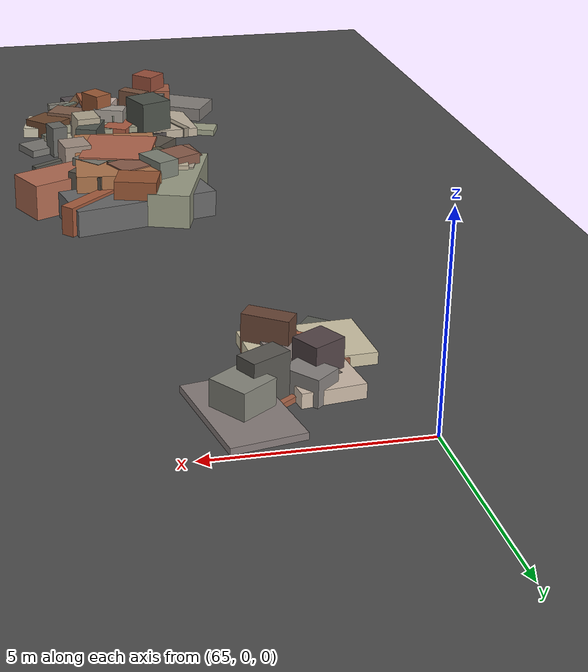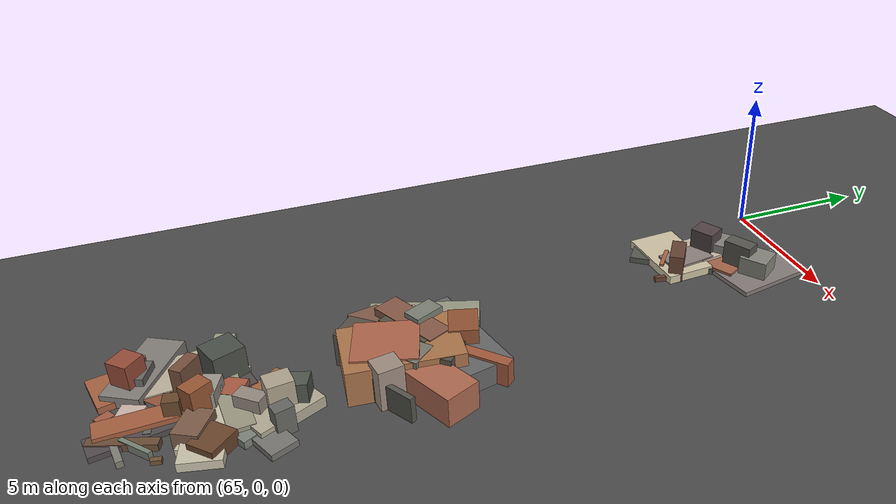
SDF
<sdf version="1.6">
 <world name="navitas_arena">
  <model name="ground_plane">
   <static>true</static>
   <link name="link">
    <collision name="collision">
     <geometry><plane><normal>0 0 1</normal><size>400 400</size></plane></geometry>
     <surface><friction><ode><mu>0.800</mu><mu2>0.800</mu2></ode></friction></surface>
    </collision>
    <visual name="visual">
     <cast_shadows>false</cast_shadows>
     <geometry><plane><normal>0 0 1</normal><size>400 400</size></plane></geometry>
     <material>
      <specular>0.04 0.04 0.04 1</specular>
      <script>
       <uri>file://media/materials/scripts/navitas_asphalt.material</uri>
       <name>Navitas/RealArenaAsphalt</name>
      </script>
     </material>
    </visual>
   </link>
  </model>
  <model name="blk_zor_1_0_3">
   <static>true</static>
   <pose>69.164 -13.826 0.000 0 0 0</pose>
   <link name="link">
    <collision name="col_0">
     <pose>-1.313 0.039 0.469 0.000 0.000 1.238</pose>
     <geometry><box><size>3.545 1.150 0.937</size></box></geometry>
    </collision>
    <visual name="vis_0">
     <pose>-1.313 0.039 0.469 0.000 0.000 1.238</pose>
     <geometry><box><size>3.545 1.150 0.937</size></box></geometry>
     <material>
      <ambient>0.56 0.56 0.48 1</ambient>
      <diffuse>0.60 0.61 0.52 1</diffuse>
      <specular>0.05 0.05 0.045 1</specular>
     </material>
    </visual>
    <collision name="col_1">
     <pose>0.157 -1.571 0.633 0.000 0.000 -0.287</pose>
     <geometry><box><size>1.962 2.049 1.266</size></box></geometry>
    </collision>
    <visual name="vis_1">
     <pose>0.157 -1.571 0.633 0.000 0.000 -0.287</pose>
     <geometry><box><size>1.962 2.049 1.266</size></box></geometry>
     <material>
      <ambient>0.64 0.37 0.27 1</ambient>
      <diffuse>0.69 0.40 0.30 1</diffuse>
      <specular>0.05 0.05 0.045 1</specular>
     </material>
    </visual>
    <collision name="col_2">
     <pose>1.078 -0.902 0.498 0.000 0.000 0.434</pose>
     <geometry><box><size>4.171 1.201 0.996</size></box></geometry>
    </collision>
    <visual name="vis_2">
     <pose>1.078 -0.902 0.498 0.000 0.000 0.434</pose>
     <geometry><box><size>4.171 1.201 0.996</size></box></geometry>
     <material>
      <ambient>0.64 0.39 0.29 1</ambient>
      <diffuse>0.69 0.42 0.32 1</diffuse>
      <specular>0.05 0.05 0.045 1</specular>
     </material>
    </visual>
    <collision name="col_3">
     <pose>0.893 0.727 0.409 0.000 0.000 0.744</pose>
     <geometry><box><size>3.067 0.385 0.818</size></box></geometry>
    </collision>
    <visual name="vis_3">
     <pose>0.893 0.727 0.409 0.000 0.000 0.744</pose>
     <geometry><box><size>3.067 0.385 0.818</size></box></geometry>
     <material>
      <ambient>0.60 0.34 0.23 1</ambient>
      <diffuse>0.65 0.36 0.24 1</diffuse>
      <specular>0.05 0.05 0.045 1</specular>
     </material>
    </visual>
    <collision name="col_4">
     <pose>0.856 -0.972 0.608 0.000 0.000 0.732</pose>
     <geometry><box><size>0.984 0.971 1.217</size></box></geometry>
    </collision>
    <visual name="vis_4">
     <pose>0.856 -0.972 0.608 0.000 0.000 0.732</pose>
     <geometry><box><size>0.984 0.971 1.217</size></box></geometry>
     <material>
      <ambient>0.44 0.43 0.40 1</ambient>
      <diffuse>0.48 0.47 0.43 1</diffuse>
      <specular>0.05 0.05 0.045 1</specular>
     </material>
    </visual>
    <collision name="col_5">
     <pose>1.015 -0.474 0.438 0.000 0.000 -0.391</pose>
     <geometry><box><size>0.368 0.247 0.876</size></box></geometry>
    </collision>
    <visual name="vis_5">
     <pose>1.015 -0.474 0.438 0.000 0.000 -0.391</pose>
     <geometry><box><size>0.368 0.247 0.876</size></box></geometry>
     <material>
      <ambient>0.67 0.40 0.30 1</ambient>
      <diffuse>0.73 0.43 0.32 1</diffuse>
      <specular>0.05 0.05 0.045 1</specular>
     </material>
    </visual>
    <collision name="col_6">
     <pose>-0.011 0.942 0.625 0.000 0.000 1.282</pose>
     <geometry><box><size>0.945 1.163 1.250</size></box></geometry>
    </collision>
    <visual name="vis_6">
     <pose>-0.011 0.942 0.625 0.000 0.000 1.282</pose>
     <geometry><box><size>0.945 1.163 1.250</size></box></geometry>
     <material>
      <ambient>0.54 0.30 0.18 1</ambient>
      <diffuse>0.58 0.33 0.20 1</diffuse>
      <specular>0.05 0.05 0.045 1</specular>
     </material>
    </visual>
    <collision name="col_7">
     <pose>-0.031 0.706 0.366 0.000 0.000 0.223</pose>
     <geometry><box><size>4.001 1.656 0.731</size></box></geometry>
    </collision>
    <visual name="vis_7">
     <pose>-0.031 0.706 0.366 0.000 0.000 0.223</pose>
     <geometry><box><size>4.001 1.656 0.731</size></box></geometry>
     <material>
      <ambient>0.38 0.38 0.38 1</ambient>
      <diffuse>0.41 0.41 0.41 1</diffuse>
      <specular>0.05 0.05 0.045 1</specular>
     </material>
    </visual>
    <collision name="col_8">
     <pose>0.071 -1.146 0.589 0.000 0.000 0.850</pose>
     <geometry><box><size>3.953 1.065 1.178</size></box></geometry>
    </collision>
    <visual name="vis_8">
     <pose>0.071 -1.146 0.589 0.000 0.000 0.850</pose>
     <geometry><box><size>3.953 1.065 1.178</size></box></geometry>
     <material>
      <ambient>0.32 0.30 0.26 1</ambient>
      <diffuse>0.35 0.32 0.28 1</diffuse>
      <specular>0.05 0.05 0.045 1</specular>
     </material>
    </visual>
    <collision name="col_9">
     <pose>0.284 -1.142 0.602 0.000 0.000 1.477</pose>
     <geometry><box><size>3.662 2.325 1.204</size></box></geometry>
    </collision>
    <visual name="vis_9">
     <pose>0.284 -1.142 0.602 0.000 0.000 1.477</pose>
     <geometry><box><size>3.662 2.325 1.204</size></box></geometry>
     <material>
      <ambient>0.63 0.43 0.28 1</ambient>
      <diffuse>0.68 0.46 0.30 1</diffuse>
      <specular>0.05 0.05 0.045 1</specular>
     </material>
    </visual>
   </link>
  </model>
  <model name="blk_zor_1_0_4">
   <static>true</static>
   <pose>69.090 -15.140 0.000 0 0 0</pose>
   <link name="link">
    <collision name="col_0">
     <pose>-1.205 -0.313 0.382 0.000 0.000 1.785</pose>
     <geometry><box><size>0.558 0.356 0.764</size></box></geometry>
    </collision>
    <visual name="vis_0">
     <pose>-1.205 -0.313 0.382 0.000 0.000 1.785</pose>
     <geometry><box><size>0.558 0.356 0.764</size></box></geometry>
     <material>
      <ambient>0.67 0.64 0.55 1</ambient>
      <diffuse>0.73 0.69 0.59 1</diffuse>
      <specular>0.05 0.05 0.045 1</specular>
     </material>
    </visual>
    <collision name="col_1">
     <pose>1.053 1.294 0.542 0.000 0.000 2.266</pose>
     <geometry><box><size>0.483 0.258 1.084</size></box></geometry>
    </collision>
    <visual name="vis_1">
     <pose>1.053 1.294 0.542 0.000 0.000 2.266</pose>
     <geometry><box><size>0.483 0.258 1.084</size></box></geometry>
     <material>
      <ambient>0.46 0.35 0.28 1</ambient>
      <diffuse>0.50 0.38 0.31 1</diffuse>
      <specular>0.05 0.05 0.045 1</specular>
     </material>
    </visual>
    <collision name="col_2">
     <pose>1.503 -0.818 0.438 0.000 0.000 3.679</pose>
     <geometry><box><size>2.743 0.190 0.876</size></box></geometry>
    </collision>
    <visual name="vis_2">
     <pose>1.503 -0.818 0.438 0.000 0.000 3.679</pose>
     <geometry><box><size>2.743 0.190 0.876</size></box></geometry>
     <material>
      <ambient>0.31 0.31 0.29 1</ambient>
      <diffuse>0.34 0.34 0.31 1</diffuse>
      <specular>0.05 0.05 0.045 1</specular>
     </material>
    </visual>
    <collision name="col_3">
     <pose>-0.626 0.809 0.621 0.000 0.000 3.602</pose>
     <geometry><box><size>2.593 0.891 1.243</size></box></geometry>
    </collision>
    <visual name="vis_3">
     <pose>-0.626 0.809 0.621 0.000 0.000 3.602</pose>
     <geometry><box><size>2.593 0.891 1.243</size></box></geometry>
     <material>
      <ambient>0.50 0.33 0.27 1</ambient>
      <diffuse>0.54 0.36 0.29 1</diffuse>
      <specular>0.05 0.05 0.045 1</specular>
     </material>
    </visual>
    <collision name="col_4">
     <pose>-0.694 1.204 0.712 0.000 0.000 2.020</pose>
     <geometry><box><size>1.025 0.628 1.425</size></box></geometry>
    </collision>
    <visual name="vis_4">
     <pose>-0.694 1.204 0.712 0.000 0.000 2.020</pose>
     <geometry><box><size>1.025 0.628 1.425</size></box></geometry>
     <material>
      <ambient>0.46 0.47 0.42 1</ambient>
      <diffuse>0.49 0.51 0.46 1</diffuse>
      <specular>0.05 0.05 0.045 1</specular>
     </material>
    </visual>
    <collision name="col_5">
     <pose>-1.433 0.684 0.489 0.000 0.000 2.829</pose>
     <geometry><box><size>0.774 0.618 0.979</size></box></geometry>
    </collision>
    <visual name="vis_5">
     <pose>-1.433 0.684 0.489 0.000 0.000 2.829</pose>
     <geometry><box><size>0.774 0.618 0.979</size></box></geometry>
     <material>
      <ambient>0.64 0.59 0.53 1</ambient>
      <diffuse>0.69 0.64 0.57 1</diffuse>
      <specular>0.05 0.05 0.045 1</specular>
     </material>
    </visual>
    <collision name="col_6">
     <pose>-1.549 -0.376 0.482 0.000 0.000 1.772</pose>
     <geometry><box><size>1.028 1.053 0.964</size></box></geometry>
    </collision>
    <visual name="vis_6">
     <pose>-1.549 -0.376 0.482 0.000 0.000 1.772</pose>
     <geometry><box><size>1.028 1.053 0.964</size></box></geometry>
     <material>
      <ambient>0.47 0.34 0.27 1</ambient>
      <diffuse>0.51 0.36 0.29 1</diffuse>
      <specular>0.05 0.05 0.045 1</specular>
     </material>
    </visual>
    <collision name="col_7">
     <pose>-0.191 0.448 0.612 0.000 0.000 3.688</pose>
     <geometry><box><size>1.930 0.342 1.224</size></box></geometry>
    </collision>
    <visual name="vis_7">
     <pose>-0.191 0.448 0.612 0.000 0.000 3.688</pose>
     <geometry><box><size>1.930 0.342 1.224</size></box></geometry>
     <material>
      <ambient>0.31 0.30 0.23 1</ambient>
      <diffuse>0.33 0.32 0.25 1</diffuse>
      <specular>0.05 0.05 0.045 1</specular>
     </material>
    </visual>
    <collision name="col_8">
     <pose>-1.326 0.750 0.528 0.000 0.000 1.442</pose>
     <geometry><box><size>0.709 0.566 1.057</size></box></geometry>
    </collision>
    <visual name="vis_8">
     <pose>-1.326 0.750 0.528 0.000 0.000 1.442</pose>
     <geometry><box><size>0.709 0.566 1.057</size></box></geometry>
     <material>
      <ambient>0.70 0.65 0.55 1</ambient>
      <diffuse>0.75 0.70 0.60 1</diffuse>
      <specular>0.05 0.05 0.045 1</specular>
     </material>
    </visual>
    <collision name="col_9">
     <pose>1.466 -0.540 0.692 0.000 0.000 1.731</pose>
     <geometry><box><size>0.824 0.769 1.384</size></box></geometry>
    </collision>
    <visual name="vis_9">
     <pose>1.466 -0.540 0.692 0.000 0.000 1.731</pose>
     <geometry><box><size>0.824 0.769 1.384</size></box></geometry>
     <material>
      <ambient>0.58 0.52 0.47 1</ambient>
      <diffuse>0.63 0.56 0.51 1</diffuse>
      <specular>0.05 0.05 0.045 1</specular>
     </material>
    </visual>
   </link>
  </model>
  <model name="deb_zor_13">
   <static>true</static>
   <pose>70.018 -19.198 0.000 0 0 0</pose>
   <link name="link">
    <collision name="col_0">
     <pose>0.008 0.443 0.188 0.000 0.000 2.023</pose>
     <geometry><box><size>2.215 1.337 0.376</size></box></geometry>
    </collision>
    <visual name="vis_0">
     <pose>0.008 0.443 0.188 0.000 0.000 2.023</pose>
     <geometry><box><size>2.215 1.337 0.376</size></box></geometry>
     <material>
      <ambient>0.66 0.63 0.54 1</ambient>
      <diffuse>0.71 0.68 0.59 1</diffuse>
      <specular>0.05 0.05 0.045 1</specular>
     </material>
    </visual>
    <collision name="col_1">
     <pose>0.309 -0.351 0.108 0.000 0.000 0.429</pose>
     <geometry><box><size>3.085 0.885 0.215</size></box></geometry>
    </collision>
    <visual name="vis_1">
     <pose>0.309 -0.351 0.108 0.000 0.000 0.429</pose>
     <geometry><box><size>3.085 0.885 0.215</size></box></geometry>
     <material>
      <ambient>0.44 0.44 0.41 1</ambient>
      <diffuse>0.48 0.47 0.45 1</diffuse>
      <specular>0.05 0.05 0.045 1</specular>
     </material>
    </visual>
    <collision name="col_2">
     <pose>-0.237 0.879 0.514 0.000 0.000 1.198</pose>
     <geometry><box><size>1.032 0.638 1.028</size></box></geometry>
    </collision>
    <visual name="vis_2">
     <pose>-0.237 0.879 0.514 0.000 0.000 1.198</pose>
     <geometry><box><size>1.032 0.638 1.028</size></box></geometry>
     <material>
      <ambient>0.30 0.32 0.29 1</ambient>
      <diffuse>0.32 0.34 0.31 1</diffuse>
      <specular>0.05 0.05 0.045 1</specular>
     </material>
    </visual>
    <collision name="col_3">
     <pose>-0.431 -0.084 0.085 0.000 0.000 1.917</pose>
     <geometry><box><size>1.585 0.126 0.171</size></box></geometry>
    </collision>
    <visual name="vis_3">
     <pose>-0.431 -0.084 0.085 0.000 0.000 1.917</pose>
     <geometry><box><size>1.585 0.126 0.171</size></box></geometry>
     <material>
      <ambient>0.64 0.42 0.27 1</ambient>
      <diffuse>0.69 0.45 0.29 1</diffuse>
      <specular>0.05 0.05 0.045 1</specular>
     </material>
    </visual>
    <collision name="col_4">
     <pose>-0.712 0.069 0.092 0.000 0.000 2.253</pose>
     <geometry><box><size>2.505 1.385 0.184</size></box></geometry>
    </collision>
    <visual name="vis_4">
     <pose>-0.712 0.069 0.092 0.000 0.000 2.253</pose>
     <geometry><box><size>2.505 1.385 0.184</size></box></geometry>
     <material>
      <ambient>0.60 0.39 0.25 1</ambient>
      <diffuse>0.65 0.42 0.27 1</diffuse>
      <specular>0.05 0.05 0.045 1</specular>
     </material>
    </visual>
    <collision name="col_5">
     <pose>-0.150 0.489 0.604 0.000 0.000 1.698</pose>
     <geometry><box><size>0.814 0.710 1.208</size></box></geometry>
    </collision>
    <visual name="vis_5">
     <pose>-0.150 0.489 0.604 0.000 0.000 1.698</pose>
     <geometry><box><size>0.814 0.710 1.208</size></box></geometry>
     <material>
      <ambient>0.64 0.61 0.52 1</ambient>
      <diffuse>0.69 0.65 0.56 1</diffuse>
      <specular>0.05 0.05 0.045 1</specular>
     </material>
    </visual>
    <collision name="col_6">
     <pose>0.753 0.422 0.462 0.000 0.000 0.272</pose>
     <geometry><box><size>0.462 0.591 0.924</size></box></geometry>
    </collision>
    <visual name="vis_6">
     <pose>0.753 0.422 0.462 0.000 0.000 0.272</pose>
     <geometry><box><size>0.462 0.591 0.924</size></box></geometry>
     <material>
      <ambient>0.38 0.38 0.36 1</ambient>
      <diffuse>0.41 0.41 0.39 1</diffuse>
      <specular>0.05 0.05 0.045 1</specular>
     </material>
    </visual>
   </link>
  </model>
  <model name="deb_zor_41">
   <static>true</static>
   <pose>67.954 -2.024 0.000 0 0 0</pose>
   <link name="link">
    <collision name="col_0">
     <pose>-0.834 -0.169 0.334 0.000 0.000 2.267</pose>
     <geometry><box><size>0.964 0.736 0.667</size></box></geometry>
    </collision>
    <visual name="vis_0">
     <pose>-0.834 -0.169 0.334 0.000 0.000 2.267</pose>
     <geometry><box><size>0.964 0.736 0.667</size></box></geometry>
     <material>
      <ambient>0.49 0.47 0.46 1</ambient>
      <diffuse>0.53 0.51 0.50 1</diffuse>
      <specular>0.05 0.05 0.045 1</specular>
     </material>
    </visual>
    <collision name="col_1">
     <pose>0.744 0.389 0.082 0.000 0.000 1.755</pose>
     <geometry><box><size>2.818 1.722 0.164</size></box></geometry>
    </collision>
    <visual name="vis_1">
     <pose>0.744 0.389 0.082 0.000 0.000 1.755</pose>
     <geometry><box><size>2.818 1.722 0.164</size></box></geometry>
     <material>
      <ambient>0.49 0.45 0.45 1</ambient>
      <diffuse>0.53 0.49 0.48 1</diffuse>
      <specular>0.05 0.05 0.045 1</specular>
     </material>
    </visual>
    <collision name="col_2">
     <pose>0.189 -0.130 0.567 0.000 0.000 0.496</pose>
     <geometry><box><size>1.011 0.555 1.135</size></box></geometry>
    </collision>
    <visual name="vis_2">
     <pose>0.189 -0.130 0.567 0.000 0.000 0.496</pose>
     <geometry><box><size>1.011 0.555 1.135</size></box></geometry>
     <material>
      <ambient>0.32 0.31 0.30 1</ambient>
      <diffuse>0.35 0.34 0.32 1</diffuse>
      <specular>0.05 0.05 0.045 1</specular>
     </material>
    </visual>
    <collision name="col_3">
     <pose>0.722 0.279 0.405 0.000 0.000 2.189</pose>
     <geometry><box><size>0.989 0.990 0.810</size></box></geometry>
    </collision>
    <visual name="vis_3">
     <pose>0.722 0.279 0.405 0.000 0.000 2.189</pose>
     <geometry><box><size>0.989 0.990 0.810</size></box></geometry>
     <material>
      <ambient>0.49 0.49 0.46 1</ambient>
      <diffuse>0.53 0.53 0.49 1</diffuse>
      <specular>0.05 0.05 0.045 1</specular>
     </material>
    </visual>
    <collision name="col_4">
     <pose>-0.480 -0.022 0.066 0.000 0.000 0.614</pose>
     <geometry><box><size>2.246 0.146 0.132</size></box></geometry>
    </collision>
    <visual name="vis_4">
     <pose>-0.480 -0.022 0.066 0.000 0.000 0.614</pose>
     <geometry><box><size>2.246 0.146 0.132</size></box></geometry>
     <material>
      <ambient>0.60 0.36 0.26 1</ambient>
      <diffuse>0.65 0.39 0.28 1</diffuse>
      <specular>0.05 0.05 0.045 1</specular>
     </material>
    </visual>
    <collision name="col_5">
     <pose>-0.474 -0.713 0.099 0.000 0.000 2.162</pose>
     <geometry><box><size>0.520 0.327 0.199</size></box></geometry>
    </collision>
    <visual name="vis_5">
     <pose>-0.474 -0.713 0.099 0.000 0.000 2.162</pose>
     <geometry><box><size>0.520 0.327 0.199</size></box></geometry>
     <material>
      <ambient>0.44 0.32 0.25 1</ambient>
      <diffuse>0.47 0.34 0.27 1</diffuse>
      <specular>0.05 0.05 0.045 1</specular>
     </material>
    </visual>
   </link>
  </model>
  <model name="deb_zor_127">
   <static>true</static>
   <pose>69.146 -21.103 0.000 0 0 0</pose>
   <link name="link">
    <collision name="col_0">
     <pose>-0.278 0.517 0.402 0.000 0.000 1.205</pose>
     <geometry><box><size>0.563 0.953 0.803</size></box></geometry>
    </collision>
    <visual name="vis_0">
     <pose>-0.278 0.517 0.402 0.000 0.000 1.205</pose>
     <geometry><box><size>0.563 0.953 0.803</size></box></geometry>
     <material>
      <ambient>0.58 0.56 0.52 1</ambient>
      <diffuse>0.63 0.60 0.57 1</diffuse>
      <specular>0.05 0.05 0.045 1</specular>
     </material>
    </visual>
    <collision name="col_1">
     <pose>0.326 0.310 0.169 0.000 0.000 1.240</pose>
     <geometry><box><size>0.219 0.441 0.338</size></box></geometry>
    </collision>
    <visual name="vis_1">
     <pose>0.326 0.310 0.169 0.000 0.000 1.240</pose>
     <geometry><box><size>0.219 0.441 0.338</size></box></geometry>
     <material>
      <ambient>0.70 0.64 0.55 1</ambient>
      <diffuse>0.76 0.69 0.59 1</diffuse>
      <specular>0.05 0.05 0.045 1</specular>
     </material>
    </visual>
    <collision name="col_2">
     <pose>0.026 -0.532 0.429 0.000 0.000 2.927</pose>
     <geometry><box><size>0.454 0.492 0.858</size></box></geometry>
    </collision>
    <visual name="vis_2">
     <pose>0.026 -0.532 0.429 0.000 0.000 2.927</pose>
     <geometry><box><size>0.454 0.492 0.858</size></box></geometry>
     <material>
      <ambient>0.39 0.27 0.17 1</ambient>
      <diffuse>0.42 0.29 0.18 1</diffuse>
      <specular>0.05 0.05 0.045 1</specular>
     </material>
    </visual>
    <collision name="col_3">
     <pose>-0.512 0.413 0.314 0.000 0.000 2.103</pose>
     <geometry><box><size>0.589 0.790 0.627</size></box></geometry>
    </collision>
    <visual name="vis_3">
     <pose>-0.512 0.413 0.314 0.000 0.000 2.103</pose>
     <geometry><box><size>0.589 0.790 0.627</size></box></geometry>
     <material>
      <ambient>0.61 0.62 0.55 1</ambient>
      <diffuse>0.65 0.67 0.59 1</diffuse>
      <specular>0.05 0.05 0.045 1</specular>
     </material>
    </visual>
    <collision name="col_4">
     <pose>0.546 0.343 0.121 0.000 0.000 2.632</pose>
     <geometry><box><size>2.768 0.759 0.243</size></box></geometry>
    </collision>
    <visual name="vis_4">
     <pose>0.546 0.343 0.121 0.000 0.000 2.632</pose>
     <geometry><box><size>2.768 0.759 0.243</size></box></geometry>
     <material>
      <ambient>0.75 0.72 0.63 1</ambient>
      <diffuse>0.81 0.78 0.68 1</diffuse>
      <specular>0.05 0.05 0.045 1</specular>
     </material>
    </visual>
    <collision name="col_5">
     <pose>0.116 0.157 0.607 0.000 0.000 2.147</pose>
     <geometry><box><size>0.754 0.579 1.213</size></box></geometry>
    </collision>
    <visual name="vis_5">
     <pose>0.116 0.157 0.607 0.000 0.000 2.147</pose>
     <geometry><box><size>0.754 0.579 1.213</size></box></geometry>
     <material>
      <ambient>0.56 0.32 0.20 1</ambient>
      <diffuse>0.61 0.35 0.21 1</diffuse>
      <specular>0.05 0.05 0.045 1</specular>
     </material>
    </visual>
   </link>
  </model>
  <model name="deb_zor_162">
   <static>true</static>
   <pose>67.107 -22.910 0.000 0 0 0</pose>
   <link name="link">
    <collision name="col_0">
     <pose>0.377 0.161 0.138 0.000 0.000 0.959</pose>
     <geometry><box><size>0.283 0.440 0.275</size></box></geometry>
    </collision>
    <visual name="vis_0">
     <pose>0.377 0.161 0.138 0.000 0.000 0.959</pose>
     <geometry><box><size>0.283 0.440 0.275</size></box></geometry>
     <material>
      <ambient>0.39 0.28 0.22 1</ambient>
      <diffuse>0.42 0.31 0.24 1</diffuse>
      <specular>0.05 0.05 0.045 1</specular>
     </material>
    </visual>
    <collision name="col_1">
     <pose>0.019 -0.133 0.111 0.000 0.000 0.235</pose>
     <geometry><box><size>1.532 1.767 0.222</size></box></geometry>
    </collision>
    <visual name="vis_1">
     <pose>0.019 -0.133 0.111 0.000 0.000 0.235</pose>
     <geometry><box><size>1.532 1.767 0.222</size></box></geometry>
     <material>
      <ambient>0.61 0.37 0.24 1</ambient>
      <diffuse>0.66 0.39 0.26 1</diffuse>
      <specular>0.05 0.05 0.045 1</specular>
     </material>
    </visual>
    <collision name="col_2">
     <pose>0.512 0.397 0.117 0.000 0.000 1.143</pose>
     <geometry><box><size>1.942 0.139 0.234</size></box></geometry>
    </collision>
    <visual name="vis_2">
     <pose>0.512 0.397 0.117 0.000 0.000 1.143</pose>
     <geometry><box><size>1.942 0.139 0.234</size></box></geometry>
     <material>
      <ambient>0.54 0.53 0.48 1</ambient>
      <diffuse>0.58 0.57 0.52 1</diffuse>
      <specular>0.05 0.05 0.045 1</specular>
     </material>
    </visual>
    <collision name="col_3">
     <pose>0.076 0.335 0.329 0.000 0.000 1.178</pose>
     <geometry><box><size>0.800 0.913 0.658</size></box></geometry>
    </collision>
    <visual name="vis_3">
     <pose>0.076 0.335 0.329 0.000 0.000 1.178</pose>
     <geometry><box><size>0.800 0.913 0.658</size></box></geometry>
     <material>
      <ambient>0.39 0.38 0.36 1</ambient>
      <diffuse>0.42 0.41 0.39 1</diffuse>
      <specular>0.05 0.05 0.045 1</specular>
     </material>
    </visual>
    <collision name="col_4">
     <pose>0.491 0.630 0.084 0.000 0.000 1.050</pose>
     <geometry><box><size>1.600 0.289 0.168</size></box></geometry>
    </collision>
    <visual name="vis_4">
     <pose>0.491 0.630 0.084 0.000 0.000 1.050</pose>
     <geometry><box><size>1.600 0.289 0.168</size></box></geometry>
     <material>
      <ambient>0.40 0.36 0.35 1</ambient>
      <diffuse>0.43 0.39 0.38 1</diffuse>
      <specular>0.05 0.05 0.045 1</specular>
     </material>
    </visual>
    <collision name="col_5">
     <pose>0.183 0.146 0.609 0.000 0.000 -0.775</pose>
     <geometry><box><size>0.758 0.741 1.218</size></box></geometry>
    </collision>
    <visual name="vis_5">
     <pose>0.183 0.146 0.609 0.000 0.000 -0.775</pose>
     <geometry><box><size>0.758 0.741 1.218</size></box></geometry>
     <material>
      <ambient>0.56 0.29 0.21 1</ambient>
      <diffuse>0.60 0.31 0.23 1</diffuse>
      <specular>0.05 0.05 0.045 1</specular>
     </material>
    </visual>
   </link>
  </model>
  <model name="deb_zor_174">
   <static>true</static>
   <pose>66.849 -22.705 0.000 0 0 0</pose>
   <link name="link">
    <collision name="col_0">
     <pose>-0.065 0.339 0.203 0.000 0.000 2.610</pose>
     <geometry><box><size>2.905 1.262 0.406</size></box></geometry>
    </collision>
    <visual name="vis_0">
     <pose>-0.065 0.339 0.203 0.000 0.000 2.610</pose>
     <geometry><box><size>2.905 1.262 0.406</size></box></geometry>
     <material>
      <ambient>0.48 0.47 0.45 1</ambient>
      <diffuse>0.52 0.50 0.48 1</diffuse>
      <specular>0.05 0.05 0.045 1</specular>
     </material>
    </visual>
    <collision name="col_1">
     <pose>0.078 0.639 0.068 0.000 0.000 1.705</pose>
     <geometry><box><size>0.444 0.442 0.136</size></box></geometry>
    </collision>
    <visual name="vis_1">
     <pose>0.078 0.639 0.068 0.000 0.000 1.705</pose>
     <geometry><box><size>0.444 0.442 0.136</size></box></geometry>
     <material>
      <ambient>0.63 0.38 0.30 1</ambient>
      <diffuse>0.68 0.42 0.33 1</diffuse>
      <specular>0.05 0.05 0.045 1</specular>
     </material>
    </visual>
    <collision name="col_2">
     <pose>0.061 -0.003 0.366 0.000 0.000 1.439</pose>
     <geometry><box><size>0.858 0.649 0.731</size></box></geometry>
    </collision>
    <visual name="vis_2">
     <pose>0.061 -0.003 0.366 0.000 0.000 1.439</pose>
     <geometry><box><size>0.858 0.649 0.731</size></box></geometry>
     <material>
      <ambient>0.59 0.35 0.25 1</ambient>
      <diffuse>0.63 0.37 0.27 1</diffuse>
      <specular>0.05 0.05 0.045 1</specular>
     </material>
    </visual>
    <collision name="col_3">
     <pose>0.907 0.498 0.110 0.000 0.000 3.857</pose>
     <geometry><box><size>2.555 0.932 0.220</size></box></geometry>
    </collision>
    <visual name="vis_3">
     <pose>0.907 0.498 0.110 0.000 0.000 3.857</pose>
     <geometry><box><size>2.555 0.932 0.220</size></box></geometry>
     <material>
      <ambient>0.55 0.31 0.21 1</ambient>
      <diffuse>0.59 0.34 0.23 1</diffuse>
      <specular>0.05 0.05 0.045 1</specular>
     </material>
    </visual>
    <collision name="col_4">
     <pose>-0.838 -0.351 0.074 0.000 0.000 4.126</pose>
     <geometry><box><size>0.279 0.469 0.149</size></box></geometry>
    </collision>
    <visual name="vis_4">
     <pose>-0.838 -0.351 0.074 0.000 0.000 4.126</pose>
     <geometry><box><size>0.279 0.469 0.149</size></box></geometry>
     <material>
      <ambient>0.52 0.53 0.43 1</ambient>
      <diffuse>0.56 0.57 0.46 1</diffuse>
      <specular>0.05 0.05 0.045 1</specular>
     </material>
    </visual>
   </link>
  </model>
  <model name="deb_zor_208">
   <static>true</static>
   <pose>67.252 -4.398 0.000 0 0 0</pose>
   <link name="link">
    <collision name="col_0">
     <pose>0.263 0.068 0.486 0.000 0.000 -0.600</pose>
     <geometry><box><size>1.146 0.506 0.972</size></box></geometry>
    </collision>
    <visual name="vis_0">
     <pose>0.263 0.068 0.486 0.000 0.000 -0.600</pose>
     <geometry><box><size>1.146 0.506 0.972</size></box></geometry>
     <material>
      <ambient>0.38 0.25 0.20 1</ambient>
      <diffuse>0.41 0.27 0.21 1</diffuse>
      <specular>0.05 0.05 0.045 1</specular>
     </material>
    </visual>
    <collision name="col_1">
     <pose>-0.296 -0.150 0.190 0.000 0.000 -0.682</pose>
     <geometry><box><size>1.041 0.148 0.380</size></box></geometry>
    </collision>
    <visual name="vis_1">
     <pose>-0.296 -0.150 0.190 0.000 0.000 -0.682</pose>
     <geometry><box><size>1.041 0.148 0.380</size></box></geometry>
     <material>
      <ambient>0.63 0.37 0.26 1</ambient>
      <diffuse>0.68 0.40 0.28 1</diffuse>
      <specular>0.05 0.05 0.045 1</specular>
     </material>
    </visual>
    <collision name="col_2">
     <pose>-0.450 0.309 0.106 0.000 0.000 0.905</pose>
     <geometry><box><size>3.004 0.981 0.213</size></box></geometry>
    </collision>
    <visual name="vis_2">
     <pose>-0.450 0.309 0.106 0.000 0.000 0.905</pose>
     <geometry><box><size>3.004 0.981 0.213</size></box></geometry>
     <material>
      <ambient>0.32 0.32 0.29 1</ambient>
      <diffuse>0.34 0.35 0.32 1</diffuse>
      <specular>0.05 0.05 0.045 1</specular>
     </material>
    </visual>
    <collision name="col_3">
     <pose>-0.563 0.280 0.149 0.000 0.000 0.056</pose>
     <geometry><box><size>2.776 1.772 0.298</size></box></geometry>
    </collision>
    <visual name="vis_3">
     <pose>-0.563 0.280 0.149 0.000 0.000 0.056</pose>
     <geometry><box><size>2.776 1.772 0.298</size></box></geometry>
     <material>
      <ambient>0.75 0.71 0.60 1</ambient>
      <diffuse>0.81 0.77 0.65 1</diffuse>
      <specular>0.05 0.05 0.045 1</specular>
     </material>
    </visual>
    <collision name="col_4">
     <pose>0.603 -0.276 0.088 0.000 0.000 1.390</pose>
     <geometry><box><size>1.339 0.158 0.175</size></box></geometry>
    </collision>
    <visual name="vis_4">
     <pose>0.603 -0.276 0.088 0.000 0.000 1.390</pose>
     <geometry><box><size>1.339 0.158 0.175</size></box></geometry>
     <material>
      <ambient>0.38 0.25 0.17 1</ambient>
      <diffuse>0.41 0.27 0.18 1</diffuse>
      <specular>0.05 0.05 0.045 1</specular>
     </material>
    </visual>
    <collision name="col_5">
     <pose>-0.071 0.622 0.189 0.000 0.000 1.705</pose>
     <geometry><box><size>1.714 0.995 0.379</size></box></geometry>
    </collision>
    <visual name="vis_5">
     <pose>-0.071 0.622 0.189 0.000 0.000 1.705</pose>
     <geometry><box><size>1.714 0.995 0.379</size></box></geometry>
     <material>
      <ambient>0.52 0.47 0.45 1</ambient>
      <diffuse>0.56 0.51 0.49 1</diffuse>
      <specular>0.05 0.05 0.045 1</specular>
     </material>
    </visual>
   </link>
  </model>
  <model name="deb_zor_212">
   <static>true</static>
   <pose>68.949 -23.212 0.000 0 0 0</pose>
   <link name="link">
    <collision name="col_0">
     <pose>0.523 0.360 0.096 0.000 0.000 1.761</pose>
     <geometry><box><size>2.485 0.873 0.192</size></box></geometry>
    </collision>
    <visual name="vis_0">
     <pose>0.523 0.360 0.096 0.000 0.000 1.761</pose>
     <geometry><box><size>2.485 0.873 0.192</size></box></geometry>
     <material>
      <ambient>0.31 0.28 0.28 1</ambient>
      <diffuse>0.33 0.30 0.31 1</diffuse>
      <specular>0.05 0.05 0.045 1</specular>
     </material>
    </visual>
    <collision name="col_1">
     <pose>0.189 -0.246 0.133 0.000 0.000 2.776</pose>
     <geometry><box><size>0.298 0.369 0.266</size></box></geometry>
    </collision>
    <visual name="vis_1">
     <pose>0.189 -0.246 0.133 0.000 0.000 2.776</pose>
     <geometry><box><size>0.298 0.369 0.266</size></box></geometry>
     <material>
      <ambient>0.44 0.31 0.24 1</ambient>
      <diffuse>0.48 0.33 0.26 1</diffuse>
      <specular>0.05 0.05 0.045 1</specular>
     </material>
    </visual>
    <collision name="col_2">
     <pose>0.207 0.621 0.181 0.000 0.000 1.622</pose>
     <geometry><box><size>2.545 0.751 0.362</size></box></geometry>
    </collision>
    <visual name="vis_2">
     <pose>0.207 0.621 0.181 0.000 0.000 1.622</pose>
     <geometry><box><size>2.545 0.751 0.362</size></box></geometry>
     <material>
      <ambient>0.61 0.35 0.23 1</ambient>
      <diffuse>0.66 0.38 0.25 1</diffuse>
      <specular>0.05 0.05 0.045 1</specular>
     </material>
    </visual>
    <collision name="col_3">
     <pose>-0.469 -0.331 0.089 0.000 0.000 2.160</pose>
     <geometry><box><size>0.491 0.353 0.178</size></box></geometry>
    </collision>
    <visual name="vis_3">
     <pose>-0.469 -0.331 0.089 0.000 0.000 2.160</pose>
     <geometry><box><size>0.491 0.353 0.178</size></box></geometry>
     <material>
      <ambient>0.60 0.35 0.25 1</ambient>
      <diffuse>0.65 0.38 0.27 1</diffuse>
      <specular>0.05 0.05 0.045 1</specular>
     </material>
    </visual>
    <collision name="col_4">
     <pose>-0.202 0.409 0.181 0.000 0.000 2.735</pose>
     <geometry><box><size>0.620 0.740 0.361</size></box></geometry>
    </collision>
    <visual name="vis_4">
     <pose>-0.202 0.409 0.181 0.000 0.000 2.735</pose>
     <geometry><box><size>0.620 0.740 0.361</size></box></geometry>
     <material>
      <ambient>0.75 0.67 0.63 1</ambient>
      <diffuse>0.81 0.72 0.68 1</diffuse>
      <specular>0.05 0.05 0.045 1</specular>
     </material>
    </visual>
   </link>
  </model>
  <model name="deb_zor_271">
   <static>true</static>
   <pose>68.841 -19.801 0.000 0 0 0</pose>
   <link name="link">
    <collision name="col_0">
     <pose>-0.268 0.225 0.095 0.000 0.000 2.957</pose>
     <geometry><box><size>2.028 0.151 0.190</size></box></geometry>
    </collision>
    <visual name="vis_0">
     <pose>-0.268 0.225 0.095 0.000 0.000 2.957</pose>
     <geometry><box><size>2.028 0.151 0.190</size></box></geometry>
     <material>
      <ambient>0.72 0.67 0.58 1</ambient>
      <diffuse>0.77 0.72 0.63 1</diffuse>
      <specular>0.05 0.05 0.045 1</specular>
     </material>
    </visual>
    <collision name="col_1">
     <pose>1.001 -0.040 0.098 0.000 0.000 1.014</pose>
     <geometry><box><size>2.234 0.260 0.197</size></box></geometry>
    </collision>
    <visual name="vis_1">
     <pose>1.001 -0.040 0.098 0.000 0.000 1.014</pose>
     <geometry><box><size>2.234 0.260 0.197</size></box></geometry>
     <material>
      <ambient>0.41 0.29 0.23 1</ambient>
      <diffuse>0.44 0.31 0.25 1</diffuse>
      <specular>0.05 0.05 0.045 1</specular>
     </material>
    </visual>
    <collision name="col_2">
     <pose>-0.063 0.381 0.082 0.000 0.000 3.189</pose>
     <geometry><box><size>0.387 0.350 0.164</size></box></geometry>
    </collision>
    <visual name="vis_2">
     <pose>-0.063 0.381 0.082 0.000 0.000 3.189</pose>
     <geometry><box><size>0.387 0.350 0.164</size></box></geometry>
     <material>
      <ambient>0.55 0.54 0.49 1</ambient>
      <diffuse>0.59 0.58 0.53 1</diffuse>
      <specular>0.05 0.05 0.045 1</specular>
     </material>
    </visual>
    <collision name="col_3">
     <pose>0.995 -0.213 0.129 0.000 0.000 0.513</pose>
     <geometry><box><size>2.373 1.162 0.258</size></box></geometry>
    </collision>
    <visual name="vis_3">
     <pose>0.995 -0.213 0.129 0.000 0.000 0.513</pose>
     <geometry><box><size>2.373 1.162 0.258</size></box></geometry>
     <material>
      <ambient>0.46 0.50 0.44 1</ambient>
      <diffuse>0.50 0.53 0.48 1</diffuse>
      <specular>0.05 0.05 0.045 1</specular>
     </material>
    </visual>
    <collision name="col_4">
     <pose>0.039 -0.937 0.147 0.000 0.000 1.519</pose>
     <geometry><box><size>0.335 0.198 0.293</size></box></geometry>
    </collision>
    <visual name="vis_4">
     <pose>0.039 -0.937 0.147 0.000 0.000 1.519</pose>
     <geometry><box><size>0.335 0.198 0.293</size></box></geometry>
     <material>
      <ambient>0.67 0.67 0.55 1</ambient>
      <diffuse>0.73 0.72 0.59 1</diffuse>
      <specular>0.05 0.05 0.045 1</specular>
     </material>
    </visual>
   </link>
  </model>
  <model name="deb_zor_347">
   <static>true</static>
   <pose>69.484 -19.858 0.000 0 0 0</pose>
   <link name="link">
    <collision name="col_0">
     <pose>0.280 0.871 0.089 0.000 0.000 -0.227</pose>
     <geometry><box><size>0.479 0.360 0.178</size></box></geometry>
    </collision>
    <visual name="vis_0">
     <pose>0.280 0.871 0.089 0.000 0.000 -0.227</pose>
     <geometry><box><size>0.479 0.360 0.178</size></box></geometry>
     <material>
      <ambient>0.71 0.66 0.59 1</ambient>
      <diffuse>0.77 0.71 0.64 1</diffuse>
      <specular>0.05 0.05 0.045 1</specular>
     </material>
    </visual>
    <collision name="col_1">
     <pose>0.176 0.291 0.091 0.000 0.000 0.413</pose>
     <geometry><box><size>2.254 0.163 0.182</size></box></geometry>
    </collision>
    <visual name="vis_1">
     <pose>0.176 0.291 0.091 0.000 0.000 0.413</pose>
     <geometry><box><size>2.254 0.163 0.182</size></box></geometry>
     <material>
      <ambient>0.32 0.32 0.30 1</ambient>
      <diffuse>0.35 0.34 0.32 1</diffuse>
      <specular>0.05 0.05 0.045 1</specular>
     </material>
    </visual>
    <collision name="col_2">
     <pose>0.307 0.341 0.414 0.000 0.000 -0.731</pose>
     <geometry><box><size>0.498 0.896 0.828</size></box></geometry>
    </collision>
    <visual name="vis_2">
     <pose>0.307 0.341 0.414 0.000 0.000 -0.731</pose>
     <geometry><box><size>0.498 0.896 0.828</size></box></geometry>
     <material>
      <ambient>0.55 0.51 0.48 1</ambient>
      <diffuse>0.59 0.55 0.51 1</diffuse>
      <specular>0.05 0.05 0.045 1</specular>
     </material>
    </visual>
    <collision name="col_3">
     <pose>0.046 -1.149 0.067 0.000 0.000 -0.454</pose>
     <geometry><box><size>1.098 0.234 0.133</size></box></geometry>
    </collision>
    <visual name="vis_3">
     <pose>0.046 -1.149 0.067 0.000 0.000 -0.454</pose>
     <geometry><box><size>1.098 0.234 0.133</size></box></geometry>
     <material>
      <ambient>0.37 0.32 0.34 1</ambient>
      <diffuse>0.40 0.34 0.37 1</diffuse>
      <specular>0.05 0.05 0.045 1</specular>
     </material>
    </visual>
    <collision name="col_4">
     <pose>-0.369 -0.176 0.201 0.000 0.000 0.088</pose>
     <geometry><box><size>3.113 0.791 0.402</size></box></geometry>
    </collision>
    <visual name="vis_4">
     <pose>-0.369 -0.176 0.201 0.000 0.000 0.088</pose>
     <geometry><box><size>3.113 0.791 0.402</size></box></geometry>
     <material>
      <ambient>0.57 0.56 0.48 1</ambient>
      <diffuse>0.62 0.61 0.52 1</diffuse>
      <specular>0.05 0.05 0.045 1</specular>
     </material>
    </visual>
    <collision name="col_5">
     <pose>0.696 -0.986 0.151 0.000 0.000 -0.231</pose>
     <geometry><box><size>2.754 1.263 0.301</size></box></geometry>
    </collision>
    <visual name="vis_5">
     <pose>0.696 -0.986 0.151 0.000 0.000 -0.231</pose>
     <geometry><box><size>2.754 1.263 0.301</size></box></geometry>
     <material>
      <ambient>0.74 0.71 0.63 1</ambient>
      <diffuse>0.80 0.77 0.68 1</diffuse>
      <specular>0.05 0.05 0.045 1</specular>
     </material>
    </visual>
    <collision name="col_6">
     <pose>-0.050 -0.183 0.111 0.000 0.000 0.539</pose>
     <geometry><box><size>1.884 0.173 0.221</size></box></geometry>
    </collision>
    <visual name="vis_6">
     <pose>-0.050 -0.183 0.111 0.000 0.000 0.539</pose>
     <geometry><box><size>1.884 0.173 0.221</size></box></geometry>
     <material>
      <ambient>0.54 0.56 0.50 1</ambient>
      <diffuse>0.58 0.61 0.54 1</diffuse>
      <specular>0.05 0.05 0.045 1</specular>
     </material>
    </visual>
   </link>
  </model>
  <model name="deb_zor_360">
   <static>true</static>
   <pose>67.002 -2.954 0.000 0 0 0</pose>
   <link name="link">
    <collision name="col_0">
     <pose>-0.167 0.644 0.071 0.000 0.000 -0.354</pose>
     <geometry><box><size>0.322 0.181 0.142</size></box></geometry>
    </collision>
    <visual name="vis_0">
     <pose>-0.167 0.644 0.071 0.000 0.000 -0.354</pose>
     <geometry><box><size>0.322 0.181 0.142</size></box></geometry>
     <material>
      <ambient>0.69 0.69 0.58 1</ambient>
      <diffuse>0.75 0.74 0.63 1</diffuse>
      <specular>0.05 0.05 0.045 1</specular>
     </material>
    </visual>
    <collision name="col_1">
     <pose>0.256 0.143 0.106 0.000 0.000 0.447</pose>
     <geometry><box><size>1.943 0.227 0.211</size></box></geometry>
    </collision>
    <visual name="vis_1">
     <pose>0.256 0.143 0.106 0.000 0.000 0.447</pose>
     <geometry><box><size>1.943 0.227 0.211</size></box></geometry>
     <material>
      <ambient>0.41 0.40 0.34 1</ambient>
      <diffuse>0.44 0.43 0.37 1</diffuse>
      <specular>0.05 0.05 0.045 1</specular>
     </material>
    </visual>
    <collision name="col_2">
     <pose>-0.209 0.203 0.545 0.000 0.000 0.516</pose>
     <geometry><box><size>0.854 0.739 1.089</size></box></geometry>
    </collision>
    <visual name="vis_2">
     <pose>-0.209 0.203 0.545 0.000 0.000 0.516</pose>
     <geometry><box><size>0.854 0.739 1.089</size></box></geometry>
     <material>
      <ambient>0.30 0.25 0.26 1</ambient>
      <diffuse>0.33 0.27 0.28 1</diffuse>
      <specular>0.05 0.05 0.045 1</specular>
     </material>
    </visual>
    <collision name="col_3">
     <pose>-0.297 -0.013 0.183 0.000 0.000 -1.141</pose>
     <geometry><box><size>1.298 0.212 0.366</size></box></geometry>
    </collision>
    <visual name="vis_3">
     <pose>-0.297 -0.013 0.183 0.000 0.000 -1.141</pose>
     <geometry><box><size>1.298 0.212 0.366</size></box></geometry>
     <material>
      <ambient>0.45 0.41 0.38 1</ambient>
      <diffuse>0.49 0.44 0.41 1</diffuse>
      <specular>0.05 0.05 0.045 1</specular>
     </material>
    </visual>
    <collision name="col_4">
     <pose>-0.199 0.363 0.177 0.000 0.000 0.133</pose>
     <geometry><box><size>1.497 1.697 0.355</size></box></geometry>
    </collision>
    <visual name="vis_4">
     <pose>-0.199 0.363 0.177 0.000 0.000 0.133</pose>
     <geometry><box><size>1.497 1.697 0.355</size></box></geometry>
     <material>
      <ambient>0.74 0.68 0.61 1</ambient>
      <diffuse>0.80 0.73 0.66 1</diffuse>
      <specular>0.05 0.05 0.045 1</specular>
     </material>
    </visual>
    <collision name="col_5">
     <pose>0.057 0.223 0.152 0.000 0.000 1.304</pose>
     <geometry><box><size>1.677 0.299 0.304</size></box></geometry>
    </collision>
    <visual name="vis_5">
     <pose>0.057 0.223 0.152 0.000 0.000 1.304</pose>
     <geometry><box><size>1.677 0.299 0.304</size></box></geometry>
     <material>
      <ambient>0.45 0.31 0.23 1</ambient>
      <diffuse>0.48 0.34 0.25 1</diffuse>
      <specular>0.05 0.05 0.045 1</specular>
     </material>
    </visual>
    <collision name="col_6">
     <pose>0.307 -0.068 0.128 0.000 0.000 0.504</pose>
     <geometry><box><size>2.636 0.970 0.256</size></box></geometry>
    </collision>
    <visual name="vis_6">
     <pose>0.307 -0.068 0.128 0.000 0.000 0.504</pose>
     <geometry><box><size>2.636 0.970 0.256</size></box></geometry>
     <material>
      <ambient>0.60 0.37 0.27 1</ambient>
      <diffuse>0.65 0.40 0.29 1</diffuse>
      <specular>0.05 0.05 0.045 1</specular>
     </material>
    </visual>
   </link>
  </model>
  <model name="deb_zor_366">
   <static>true</static>
   <pose>70.001 -21.516 0.000 0 0 0</pose>
   <link name="link">
    <collision name="col_0">
     <pose>0.777 -0.732 0.076 0.000 0.000 1.358</pose>
     <geometry><box><size>0.305 0.167 0.152</size></box></geometry>
    </collision>
    <visual name="vis_0">
     <pose>0.777 -0.732 0.076 0.000 0.000 1.358</pose>
     <geometry><box><size>0.305 0.167 0.152</size></box></geometry>
     <material>
      <ambient>0.42 0.30 0.20 1</ambient>
      <diffuse>0.45 0.33 0.22 1</diffuse>
      <specular>0.05 0.05 0.045 1</specular>
     </material>
    </visual>
    <collision name="col_1">
     <pose>0.734 0.091 0.062 0.000 0.000 2.679</pose>
     <geometry><box><size>0.409 0.170 0.125</size></box></geometry>
    </collision>
    <visual name="vis_1">
     <pose>0.734 0.091 0.062 0.000 0.000 2.679</pose>
     <geometry><box><size>0.409 0.170 0.125</size></box></geometry>
     <material>
      <ambient>0.60 0.33 0.21 1</ambient>
      <diffuse>0.64 0.36 0.23 1</diffuse>
      <specular>0.05 0.05 0.045 1</specular>
     </material>
    </visual>
    <collision name="col_2">
     <pose>0.133 0.358 0.305 0.000 0.000 2.622</pose>
     <geometry><box><size>1.148 0.823 0.609</size></box></geometry>
    </collision>
    <visual name="vis_2">
     <pose>0.133 0.358 0.305 0.000 0.000 2.622</pose>
     <geometry><box><size>1.148 0.823 0.609</size></box></geometry>
     <material>
      <ambient>0.46 0.34 0.27 1</ambient>
      <diffuse>0.50 0.37 0.29 1</diffuse>
      <specular>0.05 0.05 0.045 1</specular>
     </material>
    </visual>
    <collision name="col_3">
     <pose>0.853 0.790 0.256 0.000 0.000 2.331</pose>
     <geometry><box><size>1.062 0.907 0.511</size></box></geometry>
    </collision>
    <visual name="vis_3">
     <pose>0.853 0.790 0.256 0.000 0.000 2.331</pose>
     <geometry><box><size>1.062 0.907 0.511</size></box></geometry>
     <material>
      <ambient>0.40 0.26 0.17 1</ambient>
      <diffuse>0.43 0.28 0.18 1</diffuse>
      <specular>0.05 0.05 0.045 1</specular>
     </material>
    </visual>
   </link>
  </model>
  <model name="deb_zor_372">
   <static>true</static>
   <pose>70.037 -22.629 0.000 0 0 0</pose>
   <link name="link">
    <collision name="col_0">
     <pose>-0.098 -0.672 0.111 0.000 0.000 0.184</pose>
     <geometry><box><size>1.379 0.207 0.222</size></box></geometry>
    </collision>
    <visual name="vis_0">
     <pose>-0.098 -0.672 0.111 0.000 0.000 0.184</pose>
     <geometry><box><size>1.379 0.207 0.222</size></box></geometry>
     <material>
      <ambient>0.48 0.46 0.42 1</ambient>
      <diffuse>0.51 0.50 0.46 1</diffuse>
      <specular>0.05 0.05 0.045 1</specular>
     </material>
    </visual>
    <collision name="col_1">
     <pose>0.115 -0.121 0.139 0.000 0.000 0.709</pose>
     <geometry><box><size>1.155 0.147 0.279</size></box></geometry>
    </collision>
    <visual name="vis_1">
     <pose>0.115 -0.121 0.139 0.000 0.000 0.709</pose>
     <geometry><box><size>1.155 0.147 0.279</size></box></geometry>
     <material>
      <ambient>0.44 0.48 0.43 1</ambient>
      <diffuse>0.48 0.52 0.46 1</diffuse>
      <specular>0.05 0.05 0.045 1</specular>
     </material>
    </visual>
    <collision name="col_2">
     <pose>-0.542 0.234 0.102 0.000 0.000 -0.209</pose>
     <geometry><box><size>0.418 0.223 0.204</size></box></geometry>
    </collision>
    <visual name="vis_2">
     <pose>-0.542 0.234 0.102 0.000 0.000 -0.209</pose>
     <geometry><box><size>0.418 0.223 0.204</size></box></geometry>
     <material>
      <ambient>0.37 0.37 0.33 1</ambient>
      <diffuse>0.40 0.40 0.36 1</diffuse>
      <specular>0.05 0.05 0.045 1</specular>
     </material>
    </visual>
    <collision name="col_3">
     <pose>-0.228 -0.443 0.117 0.000 0.000 1.213</pose>
     <geometry><box><size>2.054 0.319 0.235</size></box></geometry>
    </collision>
    <visual name="vis_3">
     <pose>-0.228 -0.443 0.117 0.000 0.000 1.213</pose>
     <geometry><box><size>2.054 0.319 0.235</size></box></geometry>
     <material>
      <ambient>0.40 0.28 0.21 1</ambient>
      <diffuse>0.43 0.31 0.22 1</diffuse>
      <specular>0.05 0.05 0.045 1</specular>
     </material>
    </visual>
   </link>
  </model>
  <model name="deb_zor_381">
   <static>true</static>
   <pose>67.675 -20.214 0.000 0 0 0</pose>
   <link name="link">
    <collision name="col_0">
     <pose>0.041 0.163 0.605 0.000 0.000 1.946</pose>
     <geometry><box><size>1.063 0.996 1.209</size></box></geometry>
    </collision>
    <visual name="vis_0">
     <pose>0.041 0.163 0.605 0.000 0.000 1.946</pose>
     <geometry><box><size>1.063 0.996 1.209</size></box></geometry>
     <material>
      <ambient>0.28 0.29 0.27 1</ambient>
      <diffuse>0.30 0.32 0.29 1</diffuse>
      <specular>0.05 0.05 0.045 1</specular>
     </material>
    </visual>
    <collision name="col_1">
     <pose>0.344 -0.934 0.577 0.000 0.000 -0.717</pose>
     <geometry><box><size>0.899 0.408 1.153</size></box></geometry>
    </collision>
    <visual name="vis_1">
     <pose>0.344 -0.934 0.577 0.000 0.000 -0.717</pose>
     <geometry><box><size>0.899 0.408 1.153</size></box></geometry>
     <material>
      <ambient>0.43 0.29 0.22 1</ambient>
      <diffuse>0.47 0.32 0.24 1</diffuse>
      <specular>0.05 0.05 0.045 1</specular>
     </material>
    </visual>
    <collision name="col_2">
     <pose>0.432 -0.676 0.110 0.000 0.000 1.823</pose>
     <geometry><box><size>3.042 1.698 0.220</size></box></geometry>
    </collision>
    <visual name="vis_2">
     <pose>0.432 -0.676 0.110 0.000 0.000 1.823</pose>
     <geometry><box><size>3.042 1.698 0.220</size></box></geometry>
     <material>
      <ambient>0.31 0.28 0.28 1</ambient>
      <diffuse>0.33 0.30 0.30 1</diffuse>
      <specular>0.05 0.05 0.045 1</specular>
     </material>
    </visual>
    <collision name="col_3">
     <pose>-0.746 -0.254 0.151 0.000 0.000 1.964</pose>
     <geometry><box><size>1.920 0.197 0.302</size></box></geometry>
    </collision>
    <visual name="vis_3">
     <pose>-0.746 -0.254 0.151 0.000 0.000 1.964</pose>
     <geometry><box><size>1.920 0.197 0.302</size></box></geometry>
     <material>
      <ambient>0.54 0.51 0.45 1</ambient>
      <diffuse>0.59 0.55 0.48 1</diffuse>
      <specular>0.05 0.05 0.045 1</specular>
     </material>
    </visual>
    <collision name="col_4">
     <pose>0.724 -0.266 0.206 0.000 0.000 1.049</pose>
     <geometry><box><size>1.945 0.787 0.412</size></box></geometry>
    </collision>
    <visual name="vis_4">
     <pose>0.724 -0.266 0.206 0.000 0.000 1.049</pose>
     <geometry><box><size>1.945 0.787 0.412</size></box></geometry>
     <material>
      <ambient>0.62 0.33 0.24 1</ambient>
      <diffuse>0.67 0.36 0.26 1</diffuse>
      <specular>0.05 0.05 0.045 1</specular>
     </material>
    </visual>
    <collision name="col_5">
     <pose>-0.506 -0.816 0.133 0.000 0.000 1.657</pose>
     <geometry><box><size>2.947 1.682 0.266</size></box></geometry>
    </collision>
    <visual name="vis_5">
     <pose>-0.506 -0.816 0.133 0.000 0.000 1.657</pose>
     <geometry><box><size>2.947 1.682 0.266</size></box></geometry>
     <material>
      <ambient>0.69 0.65 0.57 1</ambient>
      <diffuse>0.75 0.70 0.62 1</diffuse>
      <specular>0.05 0.05 0.045 1</specular>
     </material>
    </visual>
    <collision name="col_6">
     <pose>-1.069 -0.023 0.088 0.000 0.000 -0.364</pose>
     <geometry><box><size>2.217 0.661 0.176</size></box></geometry>
    </collision>
    <visual name="vis_6">
     <pose>-1.069 -0.023 0.088 0.000 0.000 -0.364</pose>
     <geometry><box><size>2.217 0.661 0.176</size></box></geometry>
     <material>
      <ambient>0.57 0.59 0.49 1</ambient>
      <diffuse>0.62 0.63 0.53 1</diffuse>
      <specular>0.05 0.05 0.045 1</specular>
     </material>
    </visual>
   </link>
  </model>
 </world>
</sdf>
